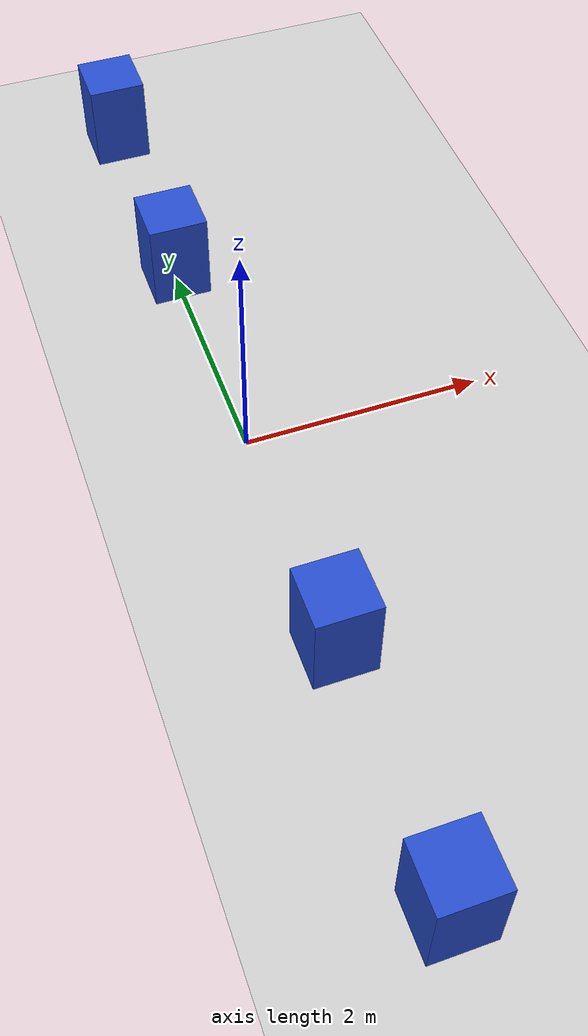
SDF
<?xml version="1.0" ?>
<sdf version="1.5">
  <world name="default">
    <!-- A global light source -->
    <include>
      <uri>model://sun</uri>
    </include>
    <!-- A ground plane -->
    <include>
      <uri>model://ground_plane</uri>
    </include>

    <physics name='default_physics' default='0' type='ode'>
      <max_step_size>0.01</max_step_size>
      <real_time_factor>1</real_time_factor>
      <real_time_update_rate>100</real_time_update_rate>
    </physics>

    <model name='my_obstacle_0'>
      <pose frame=''>0 2 0.2 0 -0 0</pose>
      <link name='s_link'>
        <inertial>
          <mass>1</mass>
          <inertia>
            <ixx>1</ixx>
            <ixy>0</ixy>
            <ixz>0</ixz>
            <iyy>1</iyy>
            <iyz>0</iyz>
            <izz>1</izz>
          </inertia>
        </inertial>
        <collision name='collision'>
          <geometry>
            <box>
              <size>.5 .5 1.2</size>
            </box>
          </geometry>
        </collision>
        <visual name='visual'>
          <geometry>
            <box>
              <size>.5 .5 1.2</size>
            </box>
          </geometry>
          <material>
            <script>
              <name>Gazebo/Blue</name>
              <uri>file://media/materials/scripts/gazebo.material</uri>
            </script>
          </material>
        </visual>
        <self_collide>0</self_collide>
        <kinematic>1</kinematic>
        <gravity>1</gravity>
      </link>
    </model>

    <model name='my_obstacle_1'>
      <pose frame=''>0 4 0.2 0 -0 0</pose>
      <link name='s_link'>
        <inertial>
          <mass>1</mass>
          <inertia>
            <ixx>1</ixx>
            <ixy>0</ixy>
            <ixz>0</ixz>
            <iyy>1</iyy>
            <iyz>0</iyz>
            <izz>1</izz>
          </inertia>
        </inertial>
        <collision name='collision'>
          <geometry>
            <box>
              <size>.5 .5 1.2</size>
            </box>
          </geometry>
        </collision>
        <visual name='visual'>
          <geometry>
            <box>
              <size>.5 .5 1.2</size>
            </box>
          </geometry>
          <material>
            <script>
              <name>Gazebo/Blue</name>
              <uri>file://media/materials/scripts/gazebo.material</uri>
            </script>
          </material>
        </visual>
        <self_collide>0</self_collide>
        <kinematic>1</kinematic>
        <gravity>1</gravity>
      </link>
    </model>

    <model name='my_obstacle_2'>
      <pose frame=''>0 -2 0.2 0 -0 0</pose>
      <link name='s_link'>
        <inertial>
          <mass>1</mass>
          <inertia>
            <ixx>1</ixx>
            <ixy>0</ixy>
            <ixz>0</ixz>
            <iyy>1</iyy>
            <iyz>0</iyz>
            <izz>1</izz>
          </inertia>
        </inertial>
        <collision name='collision'>
          <geometry>
            <box>
              <size>.5 .5 1.2</size>
            </box>
          </geometry>
        </collision>
        <visual name='visual'>
          <geometry>
            <box>
              <size>.5 .5 1.2</size>
            </box>
          </geometry>
          <material>
            <script>
              <name>Gazebo/Blue</name>
              <uri>file://media/materials/scripts/gazebo.material</uri>
            </script>
          </material>
        </visual>
        <self_collide>0</self_collide>
        <kinematic>1</kinematic>
        <gravity>1</gravity>
      </link>
    </model>

    <model name='my_obstacle_3'>
      <pose frame=''>0 -4 0.2 0 -0 0</pose>
      <link name='s_link'>
        <inertial>
          <mass>1</mass>
          <inertia>
            <ixx>1</ixx>
            <ixy>0</ixy>
            <ixz>0</ixz>
            <iyy>1</iyy>
            <iyz>0</iyz>
            <izz>1</izz>
          </inertia>
        </inertial>
        <collision name='collision'>
          <geometry>
            <box>
              <size>.5 .5 1.2</size>
            </box>
          </geometry>
        </collision>
        <visual name='visual'>
          <geometry>
            <box>
              <size>.5 .5 1.2</size>
            </box>
          </geometry>
          <material>
            <script>
              <name>Gazebo/Blue</name>
              <uri>file://media/materials/scripts/gazebo.material</uri>
            </script>
          </material>
        </visual>
        <self_collide>0</self_collide>
        <kinematic>1</kinematic>
        <gravity>1</gravity>
      </link>
    </model>

  </world>
</sdf>
